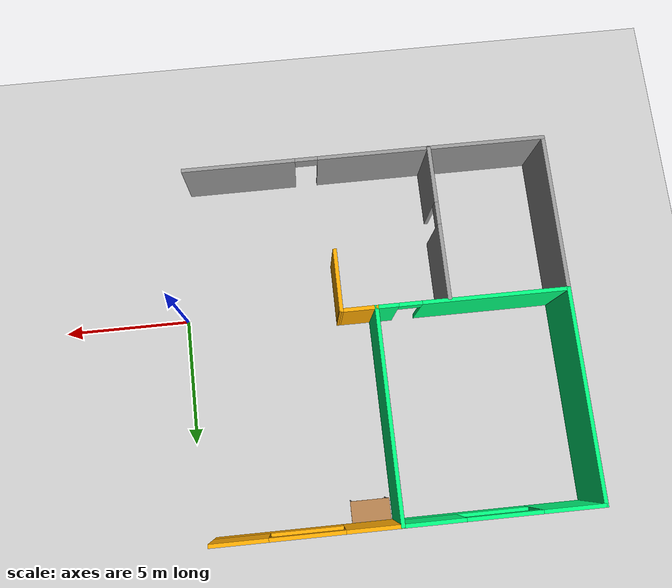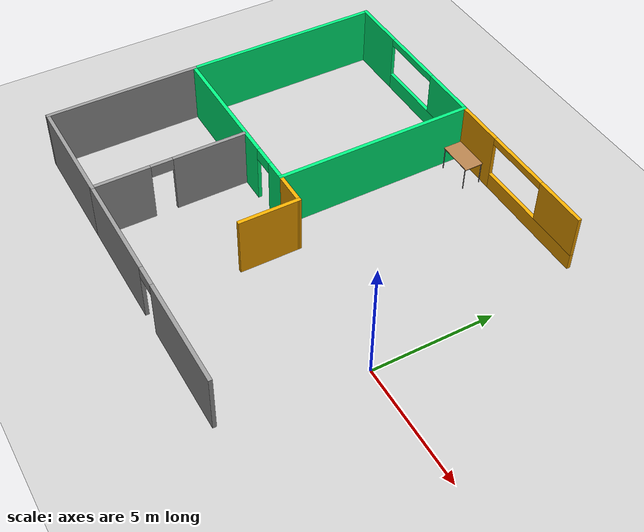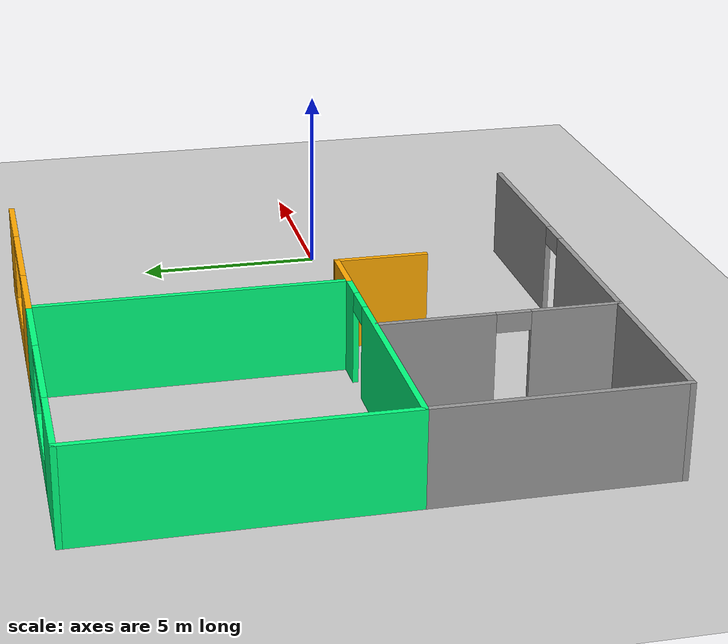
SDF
<sdf version="1.6">
 <world name="default">
  <model name="ground_plane">
   <static>1</static>
   <link name="link">
    <collision name="collision">
     <geometry><plane><normal>0 0 1</normal><size>100 100</size></plane></geometry>
     <surface><friction><ode><mu>100</mu><mu2>50</mu2></ode></friction></surface>
    </collision>
    <visual name="visual">
     <cast_shadows>0</cast_shadows>
     <geometry><plane><normal>0 0 1</normal><size>100 100</size></plane></geometry>
     <material>
      <script><uri>file://media/materials/scripts/gazebo.material</uri><name>Gazebo/Grey</name></script>
     </material>
    </visual>
   </link>
  </model>
  <model name="Building">
   <link name="Wall_48">
    <pose>-6.77372 -1.40614 0 0 0 -1.5708</pose>
    <visual name="Wall_48_Visual_0">
     <pose>-1.61017 0 1.25 0 -0 0</pose>
     <geometry><box><size>3.02966 0.15 2.5</size></box></geometry>
     <material>
      <script><uri>file://media/materials/scripts/gazebo.material</uri><name>Gazebo/Grey</name></script>
      <ambient>1 1 1 1</ambient>
      <diffuse>0.7 0.7 0.7 1</diffuse>
      <specular>0.01 0.01 0.01 1</specular>
      <emissive>0 0 0 1</emissive>
     </material>
     <meta><layer>0</layer></meta>
    </visual>
    <visual name="Wall_48_Visual_1">
     <pose>1.96483 0 1.25 0 -0 0</pose>
     <geometry><box><size>2.32034 0.15 2.5</size></box></geometry>
     <material>
      <script><uri>file://media/materials/scripts/gazebo.material</uri><name>Gazebo/Grey</name></script>
      <ambient>1 1 1 1</ambient>
      <diffuse>0.7 0.7 0.7 1</diffuse>
      <specular>0.01 0.01 0.01 1</specular>
      <emissive>0 0 0 1</emissive>
     </material>
     <meta><layer>0</layer></meta>
    </visual>
    <visual name="Wall_48_Visual_2">
     <pose>0.354659 0 2.25 0 -0 0</pose>
     <geometry><box><size>0.9 0.15 0.5</size></box></geometry>
     <material>
      <script><uri>file://media/materials/scripts/gazebo.material</uri><name>Gazebo/Grey</name></script>
      <ambient>1 1 1 1</ambient>
      <diffuse>0.7 0.7 0.7 1</diffuse>
      <specular>0.01 0.01 0.01 1</specular>
      <emissive>0 0 0 1</emissive>
     </material>
     <meta><layer>0</layer></meta>
    </visual>
    <collision name="Wall_48_Collision_0">
     <pose>-1.61017 0 1.25 0 -0 0</pose>
     <geometry><box><size>3.02966 0.15 2.5</size></box></geometry>
     <surface>
      <friction>
       <ode><mu>1</mu><mu2>1</mu2><fdir1>0 0 0</fdir1><slip1>0</slip1><slip2>0</slip2></ode>
       <torsional>
        <coefficient>1</coefficient>
        <patch_radius>0</patch_radius>
        <surface_radius>0</surface_radius>
        <use_patch_radius>1</use_patch_radius>
        <ode><slip>0</slip></ode>
       </torsional>
      </friction>
      <bounce><restitution_coefficient>0</restitution_coefficient><threshold>1e+06</threshold></bounce>
      <contact>
       <collide_without_contact>0</collide_without_contact>
       <collide_without_contact_bitmask>1</collide_without_contact_bitmask>
       <collide_bitmask>1</collide_bitmask>
       <ode>
        <soft_cfm>0</soft_cfm>
        <soft_erp>0.2</soft_erp>
        <kp>1e+13</kp>
        <kd>1</kd>
        <max_vel>0.01</max_vel>
        <min_depth>0</min_depth>
       </ode>
       <bullet>
        <split_impulse>1</split_impulse>
        <split_impulse_penetration_threshold>-0.01</split_impulse_penetration_threshold>
        <soft_cfm>0</soft_cfm>
        <soft_erp>0.2</soft_erp>
        <kp>1e+13</kp>
        <kd>1</kd>
       </bullet>
      </contact>
     </surface>
    </collision>
    <collision name="Wall_48_Collision_1">
     <pose>1.96483 0 1.25 0 -0 0</pose>
     <geometry><box><size>2.32034 0.15 2.5</size></box></geometry>
     <surface>
      <friction>
       <ode><mu>1</mu><mu2>1</mu2><fdir1>0 0 0</fdir1><slip1>0</slip1><slip2>0</slip2></ode>
       <torsional>
        <coefficient>1</coefficient>
        <patch_radius>0</patch_radius>
        <surface_radius>0</surface_radius>
        <use_patch_radius>1</use_patch_radius>
        <ode><slip>0</slip></ode>
       </torsional>
      </friction>
      <bounce><restitution_coefficient>0</restitution_coefficient><threshold>1e+06</threshold></bounce>
      <contact>
       <collide_without_contact>0</collide_without_contact>
       <collide_without_contact_bitmask>1</collide_without_contact_bitmask>
       <collide_bitmask>1</collide_bitmask>
       <ode>
        <soft_cfm>0</soft_cfm>
        <soft_erp>0.2</soft_erp>
        <kp>1e+13</kp>
        <kd>1</kd>
        <max_vel>0.01</max_vel>
        <min_depth>0</min_depth>
       </ode>
       <bullet>
        <split_impulse>1</split_impulse>
        <split_impulse_penetration_threshold>-0.01</split_impulse_penetration_threshold>
        <soft_cfm>0</soft_cfm>
        <soft_erp>0.2</soft_erp>
        <kp>1e+13</kp>
        <kd>1</kd>
       </bullet>
      </contact>
     </surface>
    </collision>
    <collision name="Wall_48_Collision_2">
     <pose>0.354659 0 2.25 0 -0 0</pose>
     <geometry><box><size>0.9 0.15 0.5</size></box></geometry>
     <surface>
      <friction>
       <ode><mu>1</mu><mu2>1</mu2><fdir1>0 0 0</fdir1><slip1>0</slip1><slip2>0</slip2></ode>
       <torsional>
        <coefficient>1</coefficient>
        <patch_radius>0</patch_radius>
        <surface_radius>0</surface_radius>
        <use_patch_radius>1</use_patch_radius>
        <ode><slip>0</slip></ode>
       </torsional>
      </friction>
      <bounce><restitution_coefficient>0</restitution_coefficient><threshold>1e+06</threshold></bounce>
      <contact>
       <collide_without_contact>0</collide_without_contact>
       <collide_without_contact_bitmask>1</collide_without_contact_bitmask>
       <collide_bitmask>1</collide_bitmask>
       <ode>
        <soft_cfm>0</soft_cfm>
        <soft_erp>0.2</soft_erp>
        <kp>1e+13</kp>
        <kd>1</kd>
        <max_vel>0.01</max_vel>
        <min_depth>0</min_depth>
       </ode>
       <bullet>
        <split_impulse>1</split_impulse>
        <split_impulse_penetration_threshold>-0.01</split_impulse_penetration_threshold>
        <soft_cfm>0</soft_cfm>
        <soft_erp>0.2</soft_erp>
        <kp>1e+13</kp>
        <kd>1</kd>
       </bullet>
      </contact>
     </surface>
    </collision>
   </link>
   <link name="Wall_50">
    <pose>-3.95628 5.78646 0 0 -0 1.5708</pose>
    <visual name="Wall_50_Visual">
     <pose>0 0 1.25 0 -0 0</pose>
     <geometry><box><size>8.25 0.15 2.5</size></box></geometry>
     <material>
      <script><uri>file://media/materials/scripts/gazebo.material</uri><name>Gazebo/Grey</name></script>
      <ambient>0 1 0.498039 1</ambient>
      <diffuse>0.7 0.7 0.7 1</diffuse>
      <specular>0.01 0.01 0.01 1</specular>
      <emissive>0 0 0 1</emissive>
     </material>
     <meta><layer>0</layer></meta>
    </visual>
    <collision name="Wall_50_Collision">
     <pose>0 0 1.25 0 -0 0</pose>
     <geometry><box><size>8.25 0.15 2.5</size></box></geometry>
     <surface>
      <friction>
       <ode><mu>1</mu><mu2>1</mu2><fdir1>0 0 0</fdir1><slip1>0</slip1><slip2>0</slip2></ode>
       <torsional>
        <coefficient>1</coefficient>
        <patch_radius>0</patch_radius>
        <surface_radius>0</surface_radius>
        <use_patch_radius>1</use_patch_radius>
        <ode><slip>0</slip></ode>
       </torsional>
      </friction>
      <bounce><restitution_coefficient>0</restitution_coefficient><threshold>1e+06</threshold></bounce>
      <contact>
       <collide_without_contact>0</collide_without_contact>
       <collide_without_contact_bitmask>1</collide_without_contact_bitmask>
       <collide_bitmask>1</collide_bitmask>
       <ode>
        <soft_cfm>0</soft_cfm>
        <soft_erp>0.2</soft_erp>
        <kp>1e+13</kp>
        <kd>1</kd>
        <max_vel>0.01</max_vel>
        <min_depth>0</min_depth>
       </ode>
       <bullet>
        <split_impulse>1</split_impulse>
        <split_impulse_penetration_threshold>-0.01</split_impulse_penetration_threshold>
        <soft_cfm>0</soft_cfm>
        <soft_erp>0.2</soft_erp>
        <kp>1e+13</kp>
        <kd>1</kd>
       </bullet>
      </contact>
     </surface>
    </collision>
   </link>
   <link name="Wall_56">
    <pose>-3.28128 1.73646 0 0 -0 0</pose>
    <visual name="Wall_56_Visual">
     <pose>0 0 1.25 0 -0 0</pose>
     <geometry><box><size>1.5 0.15 2.5</size></box></geometry>
     <material>
      <script><uri>file://media/materials/scripts/gazebo.material</uri><name>Gazebo/Grey</name></script>
      <ambient>1 0.666667 0 1</ambient>
      <diffuse>0.7 0.7 0.7 1</diffuse>
      <specular>0.01 0.01 0.01 1</specular>
      <emissive>0 0 0 1</emissive>
     </material>
     <meta><layer>0</layer></meta>
    </visual>
    <collision name="Wall_56_Collision">
     <pose>0 0 1.25 0 -0 0</pose>
     <geometry><box><size>1.5 0.15 2.5</size></box></geometry>
     <surface>
      <friction>
       <ode><mu>1</mu><mu2>1</mu2><fdir1>0 0 0</fdir1><slip1>0</slip1><slip2>0</slip2></ode>
       <torsional>
        <coefficient>1</coefficient>
        <patch_radius>0</patch_radius>
        <surface_radius>0</surface_radius>
        <use_patch_radius>1</use_patch_radius>
        <ode><slip>0</slip></ode>
       </torsional>
      </friction>
      <bounce><restitution_coefficient>0</restitution_coefficient><threshold>1e+06</threshold></bounce>
      <contact>
       <collide_without_contact>0</collide_without_contact>
       <collide_without_contact_bitmask>1</collide_without_contact_bitmask>
       <collide_bitmask>1</collide_bitmask>
       <ode>
        <soft_cfm>0</soft_cfm>
        <soft_erp>0.2</soft_erp>
        <kp>1e+13</kp>
        <kd>1</kd>
        <max_vel>0.01</max_vel>
        <min_depth>0</min_depth>
       </ode>
       <bullet>
        <split_impulse>1</split_impulse>
        <split_impulse_penetration_threshold>-0.01</split_impulse_penetration_threshold>
        <soft_cfm>0</soft_cfm>
        <soft_erp>0.2</soft_erp>
        <kp>1e+13</kp>
        <kd>1</kd>
       </bullet>
      </contact>
     </surface>
    </collision>
   </link>
   <link name="Wall_57">
    <pose>-2.60776 0.548611 0 0 0 -1.57205</pose>
    <visual name="Wall_57_Visual">
     <pose>0 0 1.25 0 -0 0</pose>
     <geometry><box><size>2.5257 0.15 2.5</size></box></geometry>
     <material>
      <script><uri>file://media/materials/scripts/gazebo.material</uri><name>Gazebo/Grey</name></script>
      <ambient>1 0.666667 0 1</ambient>
      <diffuse>0.7 0.7 0.7 1</diffuse>
      <specular>0.01 0.01 0.01 1</specular>
      <emissive>0 0 0 1</emissive>
     </material>
     <meta><layer>0</layer></meta>
    </visual>
    <collision name="Wall_57_Collision">
     <pose>0 0 1.25 0 -0 0</pose>
     <geometry><box><size>2.5257 0.15 2.5</size></box></geometry>
     <surface>
      <friction>
       <ode><mu>1</mu><mu2>1</mu2><fdir1>0 0 0</fdir1><slip1>0</slip1><slip2>0</slip2></ode>
       <torsional>
        <coefficient>1</coefficient>
        <patch_radius>0</patch_radius>
        <surface_radius>0</surface_radius>
        <use_patch_radius>1</use_patch_radius>
        <ode><slip>0</slip></ode>
       </torsional>
      </friction>
      <bounce><restitution_coefficient>0</restitution_coefficient><threshold>1e+06</threshold></bounce>
      <contact>
       <collide_without_contact>0</collide_without_contact>
       <collide_without_contact_bitmask>1</collide_without_contact_bitmask>
       <collide_bitmask>1</collide_bitmask>
       <ode>
        <soft_cfm>0</soft_cfm>
        <soft_erp>0.2</soft_erp>
        <kp>1e+13</kp>
        <kd>1</kd>
        <max_vel>0.01</max_vel>
        <min_depth>0</min_depth>
       </ode>
       <bullet>
        <split_impulse>1</split_impulse>
        <split_impulse_penetration_threshold>-0.01</split_impulse_penetration_threshold>
        <soft_cfm>0</soft_cfm>
        <soft_erp>0.2</soft_erp>
        <kp>1e+13</kp>
        <kd>1</kd>
       </bullet>
      </contact>
     </surface>
    </collision>
   </link>
   <link name="Wall_59">
    <pose>-7.63128 1.73646 0 0 -0 3.14159</pose>
    <visual name="Wall_59_Visual_0">
     <pose>-3.28588 0 1.25 0 -0 0</pose>
     <geometry><box><size>0.928242 0.15 2.5</size></box></geometry>
     <material>
      <script><uri>file://media/materials/scripts/gazebo.material</uri><name>Gazebo/Grey</name></script>
      <ambient>0 1 0.498039 1</ambient>
      <diffuse>0.7 0.7 0.7 1</diffuse>
      <specular>0.01 0.01 0.01 1</specular>
      <emissive>0 0 0 1</emissive>
     </material>
     <meta><layer>0</layer></meta>
    </visual>
    <visual name="Wall_59_Visual_1">
     <pose>0.914121 0 1.25 0 -0 0</pose>
     <geometry><box><size>5.67176 0.15 2.5</size></box></geometry>
     <material>
      <script><uri>file://media/materials/scripts/gazebo.material</uri><name>Gazebo/Grey</name></script>
      <ambient>0 1 0.498039 1</ambient>
      <diffuse>0.7 0.7 0.7 1</diffuse>
      <specular>0.01 0.01 0.01 1</specular>
      <emissive>0 0 0 1</emissive>
     </material>
     <meta><layer>0</layer></meta>
    </visual>
    <visual name="Wall_59_Visual_2">
     <pose>-2.37176 0 2.25 0 -0 0</pose>
     <geometry><box><size>0.9 0.15 0.5</size></box></geometry>
     <material>
      <script><uri>file://media/materials/scripts/gazebo.material</uri><name>Gazebo/Grey</name></script>
      <ambient>0 1 0.498039 1</ambient>
      <diffuse>0.7 0.7 0.7 1</diffuse>
      <specular>0.01 0.01 0.01 1</specular>
      <emissive>0 0 0 1</emissive>
     </material>
     <meta><layer>0</layer></meta>
    </visual>
    <collision name="Wall_59_Collision_0">
     <pose>-3.28588 0 1.25 0 -0 0</pose>
     <geometry><box><size>0.928242 0.15 2.5</size></box></geometry>
     <surface>
      <friction>
       <ode><mu>1</mu><mu2>1</mu2><fdir1>0 0 0</fdir1><slip1>0</slip1><slip2>0</slip2></ode>
       <torsional>
        <coefficient>1</coefficient>
        <patch_radius>0</patch_radius>
        <surface_radius>0</surface_radius>
        <use_patch_radius>1</use_patch_radius>
        <ode><slip>0</slip></ode>
       </torsional>
      </friction>
      <bounce><restitution_coefficient>0</restitution_coefficient><threshold>1e+06</threshold></bounce>
      <contact>
       <collide_without_contact>0</collide_without_contact>
       <collide_without_contact_bitmask>1</collide_without_contact_bitmask>
       <collide_bitmask>1</collide_bitmask>
       <ode>
        <soft_cfm>0</soft_cfm>
        <soft_erp>0.2</soft_erp>
        <kp>1e+13</kp>
        <kd>1</kd>
        <max_vel>0.01</max_vel>
        <min_depth>0</min_depth>
       </ode>
       <bullet>
        <split_impulse>1</split_impulse>
        <split_impulse_penetration_threshold>-0.01</split_impulse_penetration_threshold>
        <soft_cfm>0</soft_cfm>
        <soft_erp>0.2</soft_erp>
        <kp>1e+13</kp>
        <kd>1</kd>
       </bullet>
      </contact>
     </surface>
    </collision>
    <collision name="Wall_59_Collision_1">
     <pose>0.914121 0 1.25 0 -0 0</pose>
     <geometry><box><size>5.67176 0.15 2.5</size></box></geometry>
     <surface>
      <friction>
       <ode><mu>1</mu><mu2>1</mu2><fdir1>0 0 0</fdir1><slip1>0</slip1><slip2>0</slip2></ode>
       <torsional>
        <coefficient>1</coefficient>
        <patch_radius>0</patch_radius>
        <surface_radius>0</surface_radius>
        <use_patch_radius>1</use_patch_radius>
        <ode><slip>0</slip></ode>
       </torsional>
      </friction>
      <bounce><restitution_coefficient>0</restitution_coefficient><threshold>1e+06</threshold></bounce>
      <contact>
       <collide_without_contact>0</collide_without_contact>
       <collide_without_contact_bitmask>1</collide_without_contact_bitmask>
       <collide_bitmask>1</collide_bitmask>
       <ode>
        <soft_cfm>0</soft_cfm>
        <soft_erp>0.2</soft_erp>
        <kp>1e+13</kp>
        <kd>1</kd>
        <max_vel>0.01</max_vel>
        <min_depth>0</min_depth>
       </ode>
       <bullet>
        <split_impulse>1</split_impulse>
        <split_impulse_penetration_threshold>-0.01</split_impulse_penetration_threshold>
        <soft_cfm>0</soft_cfm>
        <soft_erp>0.2</soft_erp>
        <kp>1e+13</kp>
        <kd>1</kd>
       </bullet>
      </contact>
     </surface>
    </collision>
    <collision name="Wall_59_Collision_2">
     <pose>-2.37176 0 2.25 0 -0 0</pose>
     <geometry><box><size>0.9 0.15 0.5</size></box></geometry>
     <surface>
      <friction>
       <ode><mu>1</mu><mu2>1</mu2><fdir1>0 0 0</fdir1><slip1>0</slip1><slip2>0</slip2></ode>
       <torsional>
        <coefficient>1</coefficient>
        <patch_radius>0</patch_radius>
        <surface_radius>0</surface_radius>
        <use_patch_radius>1</use_patch_radius>
        <ode><slip>0</slip></ode>
       </torsional>
      </friction>
      <bounce><restitution_coefficient>0</restitution_coefficient><threshold>1e+06</threshold></bounce>
      <contact>
       <collide_without_contact>0</collide_without_contact>
       <collide_without_contact_bitmask>1</collide_without_contact_bitmask>
       <collide_bitmask>1</collide_bitmask>
       <ode>
        <soft_cfm>0</soft_cfm>
        <soft_erp>0.2</soft_erp>
        <kp>1e+13</kp>
        <kd>1</kd>
        <max_vel>0.01</max_vel>
        <min_depth>0</min_depth>
       </ode>
       <bullet>
        <split_impulse>1</split_impulse>
        <split_impulse_penetration_threshold>-0.01</split_impulse_penetration_threshold>
        <soft_cfm>0</soft_cfm>
        <soft_erp>0.2</soft_erp>
        <kp>1e+13</kp>
        <kd>1</kd>
       </bullet>
      </contact>
     </surface>
    </collision>
   </link>
   <link name="Wall_63">
    <pose>-7.67503 9.85 0 0 -0 0</pose>
    <visual name="Wall_63_Visual_0">
     <pose>-2.57109 0 1.25 0 -0 0</pose>
     <geometry><box><size>2.35781 0.15 2.5</size></box></geometry>
     <material>
      <script><uri>file://media/materials/scripts/gazebo.material</uri><name>Gazebo/Grey</name></script>
      <ambient>0 1 0.498039 1</ambient>
      <diffuse>0.7 0.7 0.7 1</diffuse>
      <specular>0.01 0.01 0.01 1</specular>
      <emissive>0 0 0 1</emissive>
     </material>
     <meta><layer>0</layer></meta>
    </visual>
    <visual name="Wall_63_Visual_1">
     <pose>1.17891 0 0.35 0 -0 0</pose>
     <geometry><box><size>5.14219 0.15 0.7</size></box></geometry>
     <material>
      <script><uri>file://media/materials/scripts/gazebo.material</uri><name>Gazebo/Grey</name></script>
      <ambient>0 1 0.498039 1</ambient>
      <diffuse>0.7 0.7 0.7 1</diffuse>
      <specular>0.01 0.01 0.01 1</specular>
      <emissive>0 0 0 1</emissive>
     </material>
     <meta><layer>0</layer></meta>
    </visual>
    <visual name="Wall_63_Visual_2">
     <pose>2.57891 0 1.6 0 -0 0</pose>
     <geometry><box><size>2.34219 0.15 1.8</size></box></geometry>
     <material>
      <script><uri>file://media/materials/scripts/gazebo.material</uri><name>Gazebo/Grey</name></script>
      <ambient>0 1 0.498039 1</ambient>
      <diffuse>0.7 0.7 0.7 1</diffuse>
      <specular>0.01 0.01 0.01 1</specular>
      <emissive>0 0 0 1</emissive>
     </material>
     <meta><layer>0</layer></meta>
    </visual>
    <visual name="Wall_63_Visual_3">
     <pose>0.007813 0 2.35 0 -0 0</pose>
     <geometry><box><size>2.8 0.15 0.3</size></box></geometry>
     <material>
      <script><uri>file://media/materials/scripts/gazebo.material</uri><name>Gazebo/Grey</name></script>
      <ambient>0 1 0.498039 1</ambient>
      <diffuse>0.7 0.7 0.7 1</diffuse>
      <specular>0.01 0.01 0.01 1</specular>
      <emissive>0 0 0 1</emissive>
     </material>
     <meta><layer>0</layer></meta>
    </visual>
    <collision name="Wall_63_Collision_0">
     <pose>-2.57109 0 1.25 0 -0 0</pose>
     <geometry><box><size>2.35781 0.15 2.5</size></box></geometry>
     <surface>
      <friction>
       <ode><mu>1</mu><mu2>1</mu2><fdir1>0 0 0</fdir1><slip1>0</slip1><slip2>0</slip2></ode>
       <torsional>
        <coefficient>1</coefficient>
        <patch_radius>0</patch_radius>
        <surface_radius>0</surface_radius>
        <use_patch_radius>1</use_patch_radius>
        <ode><slip>0</slip></ode>
       </torsional>
      </friction>
      <bounce><restitution_coefficient>0</restitution_coefficient><threshold>1e+06</threshold></bounce>
      <contact>
       <collide_without_contact>0</collide_without_contact>
       <collide_without_contact_bitmask>1</collide_without_contact_bitmask>
       <collide_bitmask>1</collide_bitmask>
       <ode>
        <soft_cfm>0</soft_cfm>
        <soft_erp>0.2</soft_erp>
        <kp>1e+13</kp>
        <kd>1</kd>
        <max_vel>0.01</max_vel>
        <min_depth>0</min_depth>
       </ode>
       <bullet>
        <split_impulse>1</split_impulse>
        <split_impulse_penetration_threshold>-0.01</split_impulse_penetration_threshold>
        <soft_cfm>0</soft_cfm>
        <soft_erp>0.2</soft_erp>
        <kp>1e+13</kp>
        <kd>1</kd>
       </bullet>
      </contact>
     </surface>
    </collision>
    <collision name="Wall_63_Collision_1">
     <pose>1.17891 0 0.35 0 -0 0</pose>
     <geometry><box><size>5.14219 0.15 0.7</size></box></geometry>
     <surface>
      <friction>
       <ode><mu>1</mu><mu2>1</mu2><fdir1>0 0 0</fdir1><slip1>0</slip1><slip2>0</slip2></ode>
       <torsional>
        <coefficient>1</coefficient>
        <patch_radius>0</patch_radius>
        <surface_radius>0</surface_radius>
        <use_patch_radius>1</use_patch_radius>
        <ode><slip>0</slip></ode>
       </torsional>
      </friction>
      <bounce><restitution_coefficient>0</restitution_coefficient><threshold>1e+06</threshold></bounce>
      <contact>
       <collide_without_contact>0</collide_without_contact>
       <collide_without_contact_bitmask>1</collide_without_contact_bitmask>
       <collide_bitmask>1</collide_bitmask>
       <ode>
        <soft_cfm>0</soft_cfm>
        <soft_erp>0.2</soft_erp>
        <kp>1e+13</kp>
        <kd>1</kd>
        <max_vel>0.01</max_vel>
        <min_depth>0</min_depth>
       </ode>
       <bullet>
        <split_impulse>1</split_impulse>
        <split_impulse_penetration_threshold>-0.01</split_impulse_penetration_threshold>
        <soft_cfm>0</soft_cfm>
        <soft_erp>0.2</soft_erp>
        <kp>1e+13</kp>
        <kd>1</kd>
       </bullet>
      </contact>
     </surface>
    </collision>
    <collision name="Wall_63_Collision_2">
     <pose>2.57891 0 1.6 0 -0 0</pose>
     <geometry><box><size>2.34219 0.15 1.8</size></box></geometry>
     <surface>
      <friction>
       <ode><mu>1</mu><mu2>1</mu2><fdir1>0 0 0</fdir1><slip1>0</slip1><slip2>0</slip2></ode>
       <torsional>
        <coefficient>1</coefficient>
        <patch_radius>0</patch_radius>
        <surface_radius>0</surface_radius>
        <use_patch_radius>1</use_patch_radius>
        <ode><slip>0</slip></ode>
       </torsional>
      </friction>
      <bounce><restitution_coefficient>0</restitution_coefficient><threshold>1e+06</threshold></bounce>
      <contact>
       <collide_without_contact>0</collide_without_contact>
       <collide_without_contact_bitmask>1</collide_without_contact_bitmask>
       <collide_bitmask>1</collide_bitmask>
       <ode>
        <soft_cfm>0</soft_cfm>
        <soft_erp>0.2</soft_erp>
        <kp>1e+13</kp>
        <kd>1</kd>
        <max_vel>0.01</max_vel>
        <min_depth>0</min_depth>
       </ode>
       <bullet>
        <split_impulse>1</split_impulse>
        <split_impulse_penetration_threshold>-0.01</split_impulse_penetration_threshold>
        <soft_cfm>0</soft_cfm>
        <soft_erp>0.2</soft_erp>
        <kp>1e+13</kp>
        <kd>1</kd>
       </bullet>
      </contact>
     </surface>
    </collision>
    <collision name="Wall_63_Collision_3">
     <pose>0.007813 0 2.35 0 -0 0</pose>
     <geometry><box><size>2.8 0.15 0.3</size></box></geometry>
     <surface>
      <friction>
       <ode><mu>1</mu><mu2>1</mu2><fdir1>0 0 0</fdir1><slip1>0</slip1><slip2>0</slip2></ode>
       <torsional>
        <coefficient>1</coefficient>
        <patch_radius>0</patch_radius>
        <surface_radius>0</surface_radius>
        <use_patch_radius>1</use_patch_radius>
        <ode><slip>0</slip></ode>
       </torsional>
      </friction>
      <bounce><restitution_coefficient>0</restitution_coefficient><threshold>1e+06</threshold></bounce>
      <contact>
       <collide_without_contact>0</collide_without_contact>
       <collide_without_contact_bitmask>1</collide_without_contact_bitmask>
       <collide_bitmask>1</collide_bitmask>
       <ode>
        <soft_cfm>0</soft_cfm>
        <soft_erp>0.2</soft_erp>
        <kp>1e+13</kp>
        <kd>1</kd>
        <max_vel>0.01</max_vel>
        <min_depth>0</min_depth>
       </ode>
       <bullet>
        <split_impulse>1</split_impulse>
        <split_impulse_penetration_threshold>-0.01</split_impulse_penetration_threshold>
        <soft_cfm>0</soft_cfm>
        <soft_erp>0.2</soft_erp>
        <kp>1e+13</kp>
        <kd>1</kd>
       </bullet>
      </contact>
     </surface>
    </collision>
   </link>
   <link name="Wall_64">
    <pose>-0.500034 9.85 0 0 -0 0</pose>
    <visual name="Wall_64_Visual_0">
     <pose>-2.49241 0 1.25 0 -0 0</pose>
     <geometry><box><size>2.16519 0.15 2.5</size></box></geometry>
     <material>
      <script><uri>file://media/materials/scripts/gazebo.material</uri><name>Gazebo/Grey</name></script>
      <ambient>1 0.666667 0 1</ambient>
      <diffuse>0.7 0.7 0.7 1</diffuse>
      <specular>0.01 0.01 0.01 1</specular>
      <emissive>0 0 0 1</emissive>
     </material>
     <meta><layer>0</layer></meta>
    </visual>
    <visual name="Wall_64_Visual_1">
     <pose>1.08259 0 0.35 0 -0 0</pose>
     <geometry><box><size>4.98481 0.15 0.7</size></box></geometry>
     <material>
      <script><uri>file://media/materials/scripts/gazebo.material</uri><name>Gazebo/Grey</name></script>
      <ambient>1 0.666667 0 1</ambient>
      <diffuse>0.7 0.7 0.7 1</diffuse>
      <specular>0.01 0.01 0.01 1</specular>
      <emissive>0 0 0 1</emissive>
     </material>
     <meta><layer>0</layer></meta>
    </visual>
    <visual name="Wall_64_Visual_2">
     <pose>2.48259 0 1.6 0 -0 0</pose>
     <geometry><box><size>2.18481 0.15 1.8</size></box></geometry>
     <material>
      <script><uri>file://media/materials/scripts/gazebo.material</uri><name>Gazebo/Grey</name></script>
      <ambient>1 0.666667 0 1</ambient>
      <diffuse>0.7 0.7 0.7 1</diffuse>
      <specular>0.01 0.01 0.01 1</specular>
      <emissive>0 0 0 1</emissive>
     </material>
     <meta><layer>0</layer></meta>
    </visual>
    <visual name="Wall_64_Visual_3">
     <pose>-0.009811 0 2.35 0 -0 0</pose>
     <geometry><box><size>2.8 0.15 0.3</size></box></geometry>
     <material>
      <script><uri>file://media/materials/scripts/gazebo.material</uri><name>Gazebo/Grey</name></script>
      <ambient>1 0.666667 0 1</ambient>
      <diffuse>0.7 0.7 0.7 1</diffuse>
      <specular>0.01 0.01 0.01 1</specular>
      <emissive>0 0 0 1</emissive>
     </material>
     <meta><layer>0</layer></meta>
    </visual>
    <collision name="Wall_64_Collision_0">
     <pose>-2.49241 0 1.25 0 -0 0</pose>
     <geometry><box><size>2.16519 0.15 2.5</size></box></geometry>
     <surface>
      <friction>
       <ode><mu>1</mu><mu2>1</mu2><fdir1>0 0 0</fdir1><slip1>0</slip1><slip2>0</slip2></ode>
       <torsional>
        <coefficient>1</coefficient>
        <patch_radius>0</patch_radius>
        <surface_radius>0</surface_radius>
        <use_patch_radius>1</use_patch_radius>
        <ode><slip>0</slip></ode>
       </torsional>
      </friction>
      <bounce><restitution_coefficient>0</restitution_coefficient><threshold>1e+06</threshold></bounce>
      <contact>
       <collide_without_contact>0</collide_without_contact>
       <collide_without_contact_bitmask>1</collide_without_contact_bitmask>
       <collide_bitmask>1</collide_bitmask>
       <ode>
        <soft_cfm>0</soft_cfm>
        <soft_erp>0.2</soft_erp>
        <kp>1e+13</kp>
        <kd>1</kd>
        <max_vel>0.01</max_vel>
        <min_depth>0</min_depth>
       </ode>
       <bullet>
        <split_impulse>1</split_impulse>
        <split_impulse_penetration_threshold>-0.01</split_impulse_penetration_threshold>
        <soft_cfm>0</soft_cfm>
        <soft_erp>0.2</soft_erp>
        <kp>1e+13</kp>
        <kd>1</kd>
       </bullet>
      </contact>
     </surface>
    </collision>
    <collision name="Wall_64_Collision_1">
     <pose>1.08259 0 0.35 0 -0 0</pose>
     <geometry><box><size>4.98481 0.15 0.7</size></box></geometry>
     <surface>
      <friction>
       <ode><mu>1</mu><mu2>1</mu2><fdir1>0 0 0</fdir1><slip1>0</slip1><slip2>0</slip2></ode>
       <torsional>
        <coefficient>1</coefficient>
        <patch_radius>0</patch_radius>
        <surface_radius>0</surface_radius>
        <use_patch_radius>1</use_patch_radius>
        <ode><slip>0</slip></ode>
       </torsional>
      </friction>
      <bounce><restitution_coefficient>0</restitution_coefficient><threshold>1e+06</threshold></bounce>
      <contact>
       <collide_without_contact>0</collide_without_contact>
       <collide_without_contact_bitmask>1</collide_without_contact_bitmask>
       <collide_bitmask>1</collide_bitmask>
       <ode>
        <soft_cfm>0</soft_cfm>
        <soft_erp>0.2</soft_erp>
        <kp>1e+13</kp>
        <kd>1</kd>
        <max_vel>0.01</max_vel>
        <min_depth>0</min_depth>
       </ode>
       <bullet>
        <split_impulse>1</split_impulse>
        <split_impulse_penetration_threshold>-0.01</split_impulse_penetration_threshold>
        <soft_cfm>0</soft_cfm>
        <soft_erp>0.2</soft_erp>
        <kp>1e+13</kp>
        <kd>1</kd>
       </bullet>
      </contact>
     </surface>
    </collision>
    <collision name="Wall_64_Collision_2">
     <pose>2.48259 0 1.6 0 -0 0</pose>
     <geometry><box><size>2.18481 0.15 1.8</size></box></geometry>
     <surface>
      <friction>
       <ode><mu>1</mu><mu2>1</mu2><fdir1>0 0 0</fdir1><slip1>0</slip1><slip2>0</slip2></ode>
       <torsional>
        <coefficient>1</coefficient>
        <patch_radius>0</patch_radius>
        <surface_radius>0</surface_radius>
        <use_patch_radius>1</use_patch_radius>
        <ode><slip>0</slip></ode>
       </torsional>
      </friction>
      <bounce><restitution_coefficient>0</restitution_coefficient><threshold>1e+06</threshold></bounce>
      <contact>
       <collide_without_contact>0</collide_without_contact>
       <collide_without_contact_bitmask>1</collide_without_contact_bitmask>
       <collide_bitmask>1</collide_bitmask>
       <ode>
        <soft_cfm>0</soft_cfm>
        <soft_erp>0.2</soft_erp>
        <kp>1e+13</kp>
        <kd>1</kd>
        <max_vel>0.01</max_vel>
        <min_depth>0</min_depth>
       </ode>
       <bullet>
        <split_impulse>1</split_impulse>
        <split_impulse_penetration_threshold>-0.01</split_impulse_penetration_threshold>
        <soft_cfm>0</soft_cfm>
        <soft_erp>0.2</soft_erp>
        <kp>1e+13</kp>
        <kd>1</kd>
       </bullet>
      </contact>
     </surface>
    </collision>
    <collision name="Wall_64_Collision_3">
     <pose>-0.009811 0 2.35 0 -0 0</pose>
     <geometry><box><size>2.8 0.15 0.3</size></box></geometry>
     <surface>
      <friction>
       <ode><mu>1</mu><mu2>1</mu2><fdir1>0 0 0</fdir1><slip1>0</slip1><slip2>0</slip2></ode>
       <torsional>
        <coefficient>1</coefficient>
        <patch_radius>0</patch_radius>
        <surface_radius>0</surface_radius>
        <use_patch_radius>1</use_patch_radius>
        <ode><slip>0</slip></ode>
       </torsional>
      </friction>
      <bounce><restitution_coefficient>0</restitution_coefficient><threshold>1e+06</threshold></bounce>
      <contact>
       <collide_without_contact>0</collide_without_contact>
       <collide_without_contact_bitmask>1</collide_without_contact_bitmask>
       <collide_bitmask>1</collide_bitmask>
       <ode>
        <soft_cfm>0</soft_cfm>
        <soft_erp>0.2</soft_erp>
        <kp>1e+13</kp>
        <kd>1</kd>
        <max_vel>0.01</max_vel>
        <min_depth>0</min_depth>
       </ode>
       <bullet>
        <split_impulse>1</split_impulse>
        <split_impulse_penetration_threshold>-0.01</split_impulse_penetration_threshold>
        <soft_cfm>0</soft_cfm>
        <soft_erp>0.2</soft_erp>
        <kp>1e+13</kp>
        <kd>1</kd>
       </bullet>
      </contact>
     </surface>
    </collision>
   </link>
   <link name="Wall_67">
    <pose>-11.35 5.8 0 0 0 -1.5708</pose>
    <visual name="Wall_67_Visual">
     <pose>0 0 1.25 0 -0 0</pose>
     <geometry><box><size>8.25 0.15 2.5</size></box></geometry>
     <material>
      <script><uri>file://media/materials/scripts/gazebo.material</uri><name>Gazebo/Grey</name></script>
      <ambient>0 1 0.498039 1</ambient>
      <diffuse>0.7 0.7 0.7 1</diffuse>
      <specular>0.01 0.01 0.01 1</specular>
      <emissive>0 0 0 1</emissive>
     </material>
     <meta><layer>0</layer></meta>
    </visual>
    <collision name="Wall_67_Collision">
     <pose>0 0 1.25 0 -0 0</pose>
     <geometry><box><size>8.25 0.15 2.5</size></box></geometry>
     <surface>
      <friction>
       <ode><mu>1</mu><mu2>1</mu2><fdir1>0 0 0</fdir1><slip1>0</slip1><slip2>0</slip2></ode>
       <torsional>
        <coefficient>1</coefficient>
        <patch_radius>0</patch_radius>
        <surface_radius>0</surface_radius>
        <use_patch_radius>1</use_patch_radius>
        <ode><slip>0</slip></ode>
       </torsional>
      </friction>
      <bounce><restitution_coefficient>0</restitution_coefficient><threshold>1e+06</threshold></bounce>
      <contact>
       <collide_without_contact>0</collide_without_contact>
       <collide_without_contact_bitmask>1</collide_without_contact_bitmask>
       <collide_bitmask>1</collide_bitmask>
       <ode>
        <soft_cfm>0</soft_cfm>
        <soft_erp>0.2</soft_erp>
        <kp>1e+13</kp>
        <kd>1</kd>
        <max_vel>0.01</max_vel>
        <min_depth>0</min_depth>
       </ode>
       <bullet>
        <split_impulse>1</split_impulse>
        <split_impulse_penetration_threshold>-0.01</split_impulse_penetration_threshold>
        <soft_cfm>0</soft_cfm>
        <soft_erp>0.2</soft_erp>
        <kp>1e+13</kp>
        <kd>1</kd>
       </bullet>
      </contact>
     </surface>
    </collision>
   </link>
   <link name="Wall_68">
    <pose>-11.35 -1.375 0 0 0 -1.5708</pose>
    <visual name="Wall_68_Visual">
     <pose>0 0 1.25 0 -0 0</pose>
     <geometry><box><size>6.4 0.15 2.5</size></box></geometry>
     <material>
      <script><uri>file://media/materials/scripts/gazebo.material</uri><name>Gazebo/Grey</name></script>
      <ambient>1 1 1 1</ambient>
      <diffuse>0.7 0.7 0.7 1</diffuse>
      <specular>0.01 0.01 0.01 1</specular>
      <emissive>0 0 0 1</emissive>
     </material>
     <meta><layer>0</layer></meta>
    </visual>
    <collision name="Wall_68_Collision">
     <pose>0 0 1.25 0 -0 0</pose>
     <geometry><box><size>6.4 0.15 2.5</size></box></geometry>
     <surface>
      <friction>
       <ode><mu>1</mu><mu2>1</mu2><fdir1>0 0 0</fdir1><slip1>0</slip1><slip2>0</slip2></ode>
       <torsional>
        <coefficient>1</coefficient>
        <patch_radius>0</patch_radius>
        <surface_radius>0</surface_radius>
        <use_patch_radius>1</use_patch_radius>
        <ode><slip>0</slip></ode>
       </torsional>
      </friction>
      <bounce><restitution_coefficient>0</restitution_coefficient><threshold>1e+06</threshold></bounce>
      <contact>
       <collide_without_contact>0</collide_without_contact>
       <collide_without_contact_bitmask>1</collide_without_contact_bitmask>
       <collide_bitmask>1</collide_bitmask>
       <ode>
        <soft_cfm>0</soft_cfm>
        <soft_erp>0.2</soft_erp>
        <kp>1e+13</kp>
        <kd>1</kd>
        <max_vel>0.01</max_vel>
        <min_depth>0</min_depth>
       </ode>
       <bullet>
        <split_impulse>1</split_impulse>
        <split_impulse_penetration_threshold>-0.01</split_impulse_penetration_threshold>
        <soft_cfm>0</soft_cfm>
        <soft_erp>0.2</soft_erp>
        <kp>1e+13</kp>
        <kd>1</kd>
       </bullet>
      </contact>
     </surface>
    </collision>
   </link>
   <link name="Wall_70">
    <pose>-9.05003 -4.5 0 0 -0 0</pose>
    <visual name="Wall_70_Visual">
     <pose>0 0 1.25 0 -0 0</pose>
     <geometry><box><size>4.75 0.15 2.5</size></box></geometry>
     <material>
      <script><uri>file://media/materials/scripts/gazebo.material</uri><name>Gazebo/Grey</name></script>
      <ambient>1 1 1 1</ambient>
      <diffuse>0.7 0.7 0.7 1</diffuse>
      <specular>0.01 0.01 0.01 1</specular>
      <emissive>0 0 0 1</emissive>
     </material>
     <meta><layer>0</layer></meta>
    </visual>
    <collision name="Wall_70_Collision">
     <pose>0 0 1.25 0 -0 0</pose>
     <geometry><box><size>4.75 0.15 2.5</size></box></geometry>
     <surface>
      <friction>
       <ode><mu>1</mu><mu2>1</mu2><fdir1>0 0 0</fdir1><slip1>0</slip1><slip2>0</slip2></ode>
       <torsional>
        <coefficient>1</coefficient>
        <patch_radius>0</patch_radius>
        <surface_radius>0</surface_radius>
        <use_patch_radius>1</use_patch_radius>
        <ode><slip>0</slip></ode>
       </torsional>
      </friction>
      <bounce><restitution_coefficient>0</restitution_coefficient><threshold>1e+06</threshold></bounce>
      <contact>
       <collide_without_contact>0</collide_without_contact>
       <collide_without_contact_bitmask>1</collide_without_contact_bitmask>
       <collide_bitmask>1</collide_bitmask>
       <ode>
        <soft_cfm>0</soft_cfm>
        <soft_erp>0.2</soft_erp>
        <kp>1e+13</kp>
        <kd>1</kd>
        <max_vel>0.01</max_vel>
        <min_depth>0</min_depth>
       </ode>
       <bullet>
        <split_impulse>1</split_impulse>
        <split_impulse_penetration_threshold>-0.01</split_impulse_penetration_threshold>
        <soft_cfm>0</soft_cfm>
        <soft_erp>0.2</soft_erp>
        <kp>1e+13</kp>
        <kd>1</kd>
       </bullet>
      </contact>
     </surface>
    </collision>
   </link>
   <link name="Wall_71">
    <pose>-1.87503 -4.5 0 0 -0 0</pose>
    <visual name="Wall_71_Visual_0">
     <pose>-2.70254 0 1.25 0 -0 0</pose>
     <geometry><box><size>4.49493 0.15 2.5</size></box></geometry>
     <material>
      <script><uri>file://media/materials/scripts/gazebo.material</uri><name>Gazebo/Grey</name></script>
      <ambient>1 1 1 1</ambient>
      <diffuse>0.7 0.7 0.7 1</diffuse>
      <specular>0.01 0.01 0.01 1</specular>
      <emissive>0 0 0 1</emissive>
     </material>
     <meta><layer>0</layer></meta>
    </visual>
    <visual name="Wall_71_Visual_1">
     <pose>2.69746 0 1.25 0 -0 0</pose>
     <geometry><box><size>4.50507 0.15 2.5</size></box></geometry>
     <material>
      <script><uri>file://media/materials/scripts/gazebo.material</uri><name>Gazebo/Grey</name></script>
      <ambient>1 1 1 1</ambient>
      <diffuse>0.7 0.7 0.7 1</diffuse>
      <specular>0.01 0.01 0.01 1</specular>
      <emissive>0 0 0 1</emissive>
     </material>
     <meta><layer>0</layer></meta>
    </visual>
    <visual name="Wall_71_Visual_2">
     <pose>-0.005072 0 2.25 0 -0 0</pose>
     <geometry><box><size>0.9 0.15 0.5</size></box></geometry>
     <material>
      <script><uri>file://media/materials/scripts/gazebo.material</uri><name>Gazebo/Grey</name></script>
      <ambient>1 1 1 1</ambient>
      <diffuse>0.7 0.7 0.7 1</diffuse>
      <specular>0.01 0.01 0.01 1</specular>
      <emissive>0 0 0 1</emissive>
     </material>
     <meta><layer>0</layer></meta>
    </visual>
    <collision name="Wall_71_Collision_0">
     <pose>-2.70254 0 1.25 0 -0 0</pose>
     <geometry><box><size>4.49493 0.15 2.5</size></box></geometry>
     <surface>
      <friction>
       <ode><mu>1</mu><mu2>1</mu2><fdir1>0 0 0</fdir1><slip1>0</slip1><slip2>0</slip2></ode>
       <torsional>
        <coefficient>1</coefficient>
        <patch_radius>0</patch_radius>
        <surface_radius>0</surface_radius>
        <use_patch_radius>1</use_patch_radius>
        <ode><slip>0</slip></ode>
       </torsional>
      </friction>
      <bounce><restitution_coefficient>0</restitution_coefficient><threshold>1e+06</threshold></bounce>
      <contact>
       <collide_without_contact>0</collide_without_contact>
       <collide_without_contact_bitmask>1</collide_without_contact_bitmask>
       <collide_bitmask>1</collide_bitmask>
       <ode>
        <soft_cfm>0</soft_cfm>
        <soft_erp>0.2</soft_erp>
        <kp>1e+13</kp>
        <kd>1</kd>
        <max_vel>0.01</max_vel>
        <min_depth>0</min_depth>
       </ode>
       <bullet>
        <split_impulse>1</split_impulse>
        <split_impulse_penetration_threshold>-0.01</split_impulse_penetration_threshold>
        <soft_cfm>0</soft_cfm>
        <soft_erp>0.2</soft_erp>
        <kp>1e+13</kp>
        <kd>1</kd>
       </bullet>
      </contact>
     </surface>
    </collision>
    <collision name="Wall_71_Collision_1">
     <pose>2.69746 0 1.25 0 -0 0</pose>
     <geometry><box><size>4.50507 0.15 2.5</size></box></geometry>
     <surface>
      <friction>
       <ode><mu>1</mu><mu2>1</mu2><fdir1>0 0 0</fdir1><slip1>0</slip1><slip2>0</slip2></ode>
       <torsional>
        <coefficient>1</coefficient>
        <patch_radius>0</patch_radius>
        <surface_radius>0</surface_radius>
        <use_patch_radius>1</use_patch_radius>
        <ode><slip>0</slip></ode>
       </torsional>
      </friction>
      <bounce><restitution_coefficient>0</restitution_coefficient><threshold>1e+06</threshold></bounce>
      <contact>
       <collide_without_contact>0</collide_without_contact>
       <collide_without_contact_bitmask>1</collide_without_contact_bitmask>
       <collide_bitmask>1</collide_bitmask>
       <ode>
        <soft_cfm>0</soft_cfm>
        <soft_erp>0.2</soft_erp>
        <kp>1e+13</kp>
        <kd>1</kd>
        <max_vel>0.01</max_vel>
        <min_depth>0</min_depth>
       </ode>
       <bullet>
        <split_impulse>1</split_impulse>
        <split_impulse_penetration_threshold>-0.01</split_impulse_penetration_threshold>
        <soft_cfm>0</soft_cfm>
        <soft_erp>0.2</soft_erp>
        <kp>1e+13</kp>
        <kd>1</kd>
       </bullet>
      </contact>
     </surface>
    </collision>
    <collision name="Wall_71_Collision_2">
     <pose>-0.005072 0 2.25 0 -0 0</pose>
     <geometry><box><size>0.9 0.15 0.5</size></box></geometry>
     <surface>
      <friction>
       <ode><mu>1</mu><mu2>1</mu2><fdir1>0 0 0</fdir1><slip1>0</slip1><slip2>0</slip2></ode>
       <torsional>
        <coefficient>1</coefficient>
        <patch_radius>0</patch_radius>
        <surface_radius>0</surface_radius>
        <use_patch_radius>1</use_patch_radius>
        <ode><slip>0</slip></ode>
       </torsional>
      </friction>
      <bounce><restitution_coefficient>0</restitution_coefficient><threshold>1e+06</threshold></bounce>
      <contact>
       <collide_without_contact>0</collide_without_contact>
       <collide_without_contact_bitmask>1</collide_without_contact_bitmask>
       <collide_bitmask>1</collide_bitmask>
       <ode>
        <soft_cfm>0</soft_cfm>
        <soft_erp>0.2</soft_erp>
        <kp>1e+13</kp>
        <kd>1</kd>
        <max_vel>0.01</max_vel>
        <min_depth>0</min_depth>
       </ode>
       <bullet>
        <split_impulse>1</split_impulse>
        <split_impulse_penetration_threshold>-0.01</split_impulse_penetration_threshold>
        <soft_cfm>0</soft_cfm>
        <soft_erp>0.2</soft_erp>
        <kp>1e+13</kp>
        <kd>1</kd>
       </bullet>
      </contact>
     </surface>
    </collision>
   </link>
   <static>1</static>
   <pose>-3.57737 -1.07989 0 0 -0 0</pose>
  </model>
  <model name="table">
   <static>1</static>
   <link name="link">
    <collision name="surface">
     <pose>0 0 1 0 -0 0</pose>
     <geometry><box><size>1.5 0.8 0.03</size></box></geometry>
     <surface><friction><ode><mu>0.6</mu><mu2>0.6</mu2></ode></friction></surface>
    </collision>
    <visual name="visual1">
     <pose>0 0 1 0 -0 0</pose>
     <geometry><box><size>1.5 0.8 0.03</size></box></geometry>
     <material>
      <script><uri>file://media/materials/scripts/gazebo.material</uri><name>Gazebo/Wood</name></script>
     </material>
    </visual>
    <collision name="front_left_leg">
     <pose>0.68 0.38 0.5 0 -0 0</pose>
     <geometry><cylinder><radius>0.02</radius><length>1</length></cylinder></geometry>
    </collision>
    <visual name="front_left_leg">
     <pose>0.68 0.38 0.5 0 -0 0</pose>
     <geometry><cylinder><radius>0.02</radius><length>1</length></cylinder></geometry>
     <material>
      <script><uri>file://media/materials/scripts/gazebo.material</uri><name>Gazebo/Grey</name></script>
     </material>
    </visual>
    <collision name="front_right_leg">
     <pose>0.68 -0.38 0.5 0 -0 0</pose>
     <geometry><cylinder><radius>0.02</radius><length>1</length></cylinder></geometry>
    </collision>
    <visual name="front_right_leg">
     <pose>0.68 -0.38 0.5 0 -0 0</pose>
     <geometry><cylinder><radius>0.02</radius><length>1</length></cylinder></geometry>
     <material>
      <script><uri>file://media/materials/scripts/gazebo.material</uri><name>Gazebo/Grey</name></script>
     </material>
    </visual>
    <collision name="back_right_leg">
     <pose>-0.68 -0.38 0.5 0 -0 0</pose>
     <geometry><cylinder><radius>0.02</radius><length>1</length></cylinder></geometry>
    </collision>
    <visual name="back_right_leg">
     <pose>-0.68 -0.38 0.5 0 -0 0</pose>
     <geometry><cylinder><radius>0.02</radius><length>1</length></cylinder></geometry>
     <material>
      <script><uri>file://media/materials/scripts/gazebo.material</uri><name>Gazebo/Grey</name></script>
     </material>
    </visual>
    <collision name="back_left_leg">
     <pose>-0.68 0.38 0.5 0 -0 0</pose>
     <geometry><cylinder><radius>0.02</radius><length>1</length></cylinder></geometry>
    </collision>
    <visual name="back_left_leg">
     <pose>-0.68 0.38 0.5 0 -0 0</pose>
     <geometry><cylinder><radius>0.02</radius><length>1</length></cylinder></geometry>
     <material>
      <script><uri>file://media/materials/scripts/gazebo.material</uri><name>Gazebo/Grey</name></script>
     </material>
    </visual>
   </link>
   <pose>-6.55921 8.2022 0 0 -0 0</pose>
  </model>
 </world>
</sdf>
